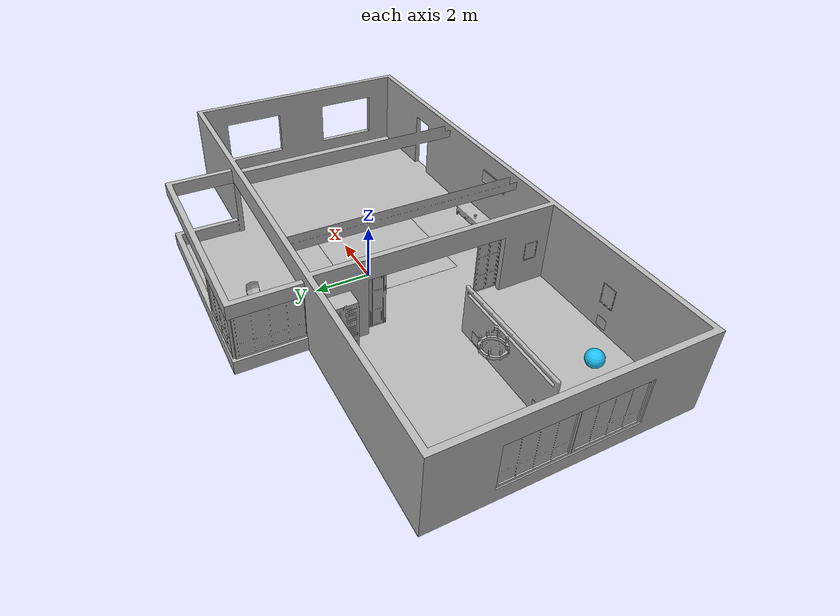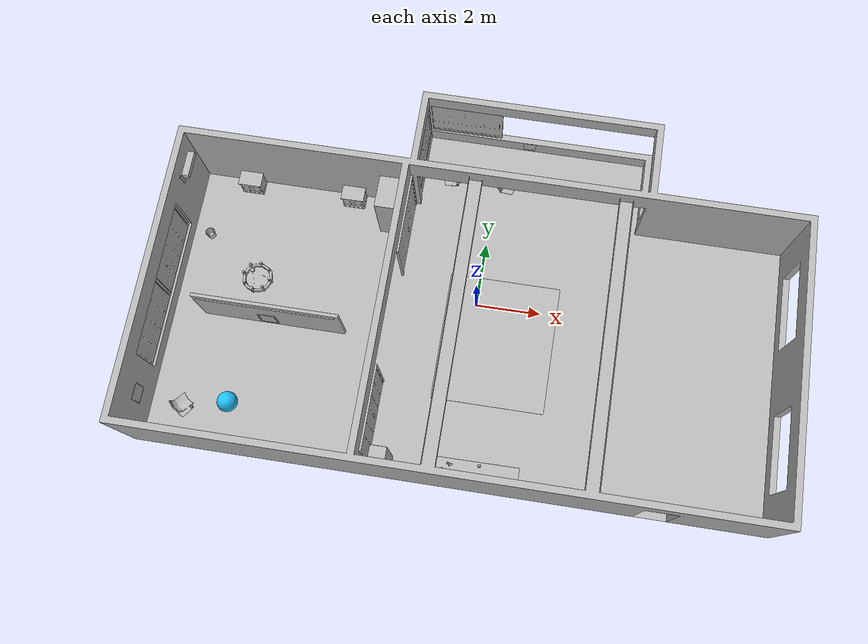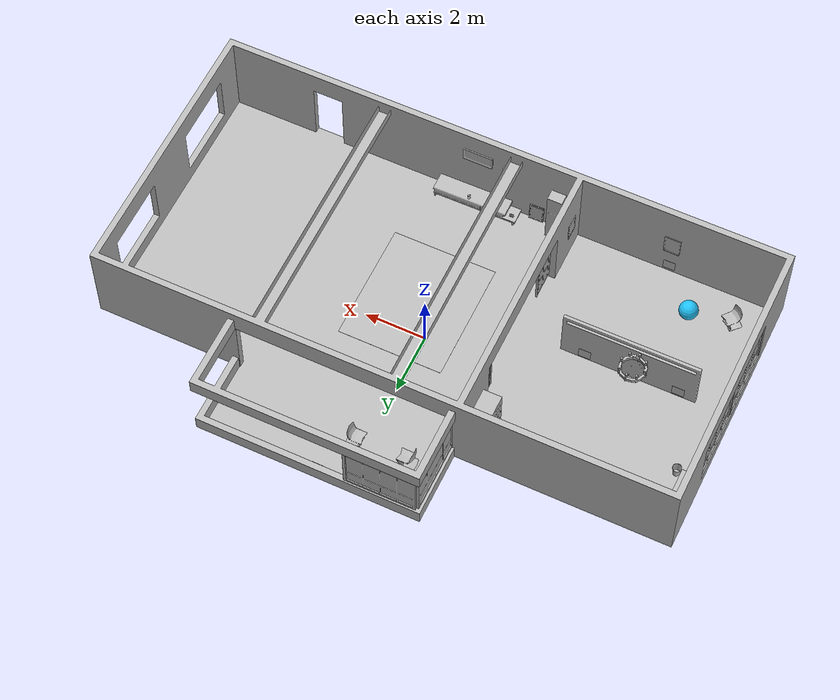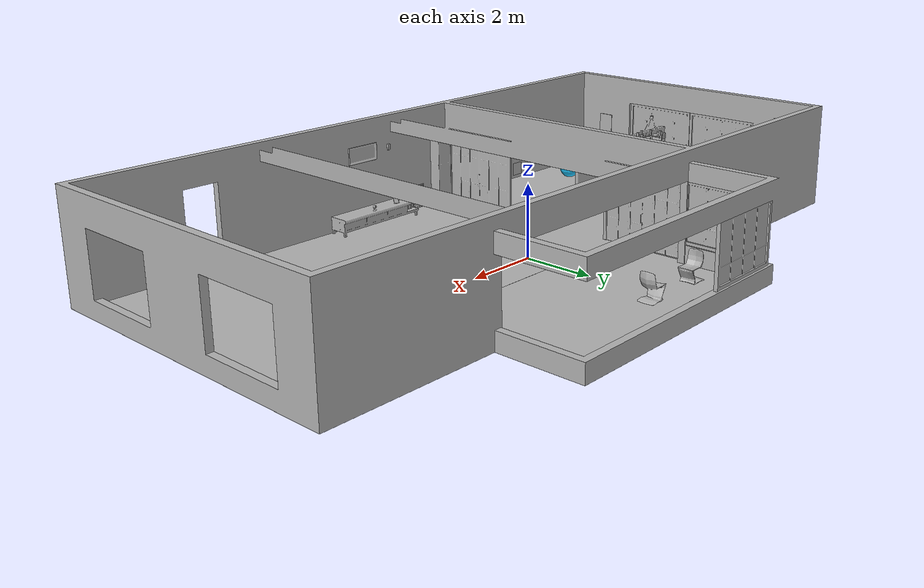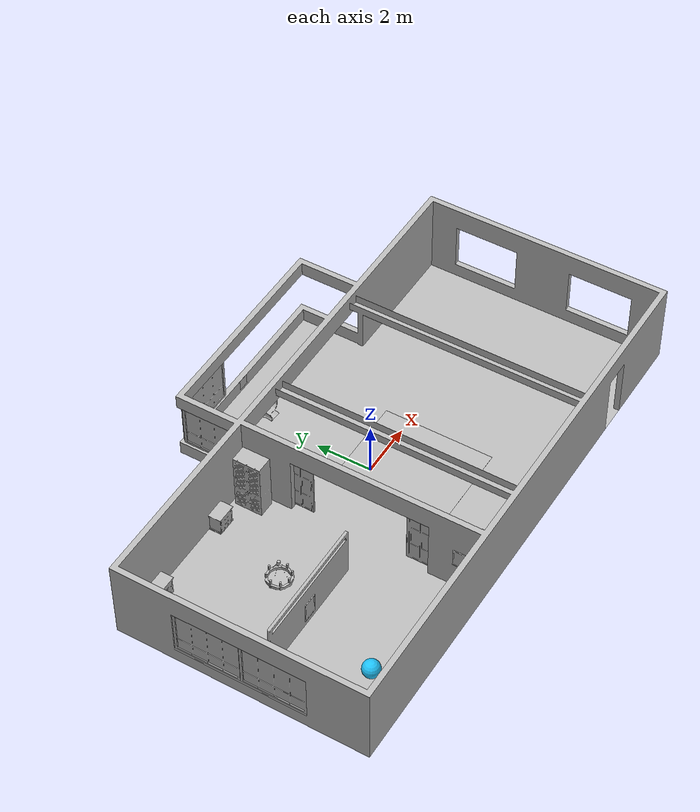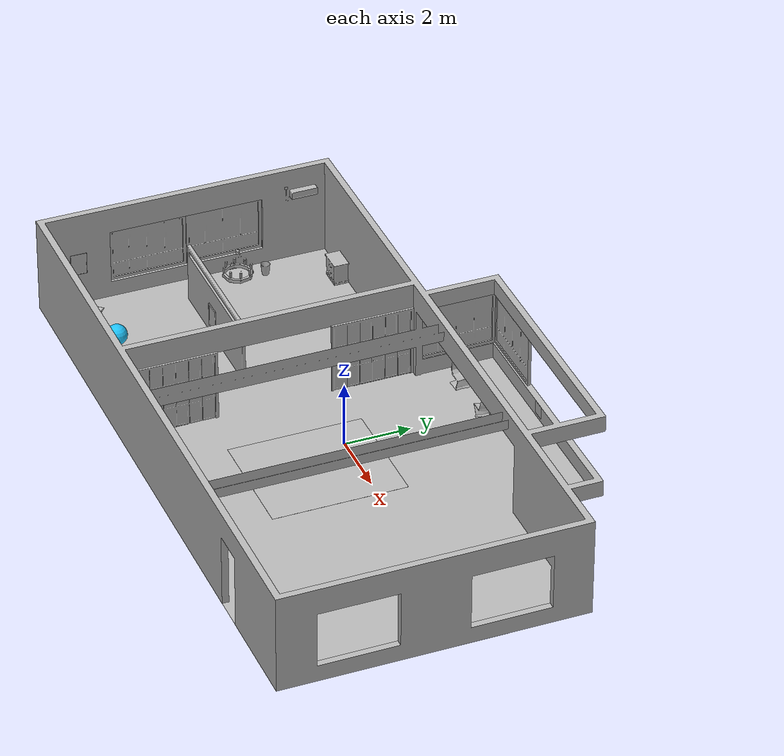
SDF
<sdf version="1.7">
 <world name="default">
  <model name="AirconditionerA_01_001">
   <static>1</static>
   <frame name="aws_robomaker_residential_AirconditionerA_01::__model__" attached_to="aws_robomaker_residential_AirconditionerA_01::link">
    <pose relative_to="__model__">0 0 0 0 -0 0</pose>
   </frame>
   <link name="aws_robomaker_residential_AirconditionerA_01::link">
    <inertial><mass>1</mass></inertial>
    <collision name="collision">
     <geometry>
      <mesh>
       <uri>model://aws_robomaker_residential_AirconditionerA_01/meshes/aws_AirconditionerA_01_collision.DAE</uri>
       <scale>1 1 1</scale>
      </mesh>
     </geometry>
    </collision>
    <visual name="visual">
     <geometry>
      <mesh>
       <uri>model://aws_robomaker_residential_AirconditionerA_01/meshes/aws_AirconditionerA_01_visual.DAE</uri>
      </mesh>
     </geometry>
     <meta><layer>1</layer></meta>
    </visual>
    <pose relative_to="aws_robomaker_residential_AirconditionerA_01::__model__">0 0 0 0 -0 0</pose>
   </link>
   <static>1</static>
   <pose>-9.19941 2.41123 2.08454 0 -0 0</pose>
  </model>
  <model name="AirconditionerB_01_001">
   <static>1</static>
   <frame name="aws_robomaker_residential_AirconditionerB_01::__model__" attached_to="aws_robomaker_residential_AirconditionerB_01::link">
    <pose relative_to="__model__">0 0 0 0 -0 0</pose>
   </frame>
   <link name="aws_robomaker_residential_AirconditionerB_01::link">
    <inertial><mass>1</mass></inertial>
    <collision name="collision">
     <geometry>
      <mesh>
       <uri>model://aws_robomaker_residential_AirconditionerB_01/meshes/aws_AirconditionerB_01_collision.DAE</uri>
       <scale>1 1 1</scale>
      </mesh>
     </geometry>
    </collision>
    <visual name="visual">
     <geometry>
      <mesh>
       <uri>model://aws_robomaker_residential_AirconditionerB_01/meshes/aws_AirconditionerB_01_visual.DAE</uri>
      </mesh>
     </geometry>
     <meta><layer>1</layer></meta>
    </visual>
    <pose relative_to="aws_robomaker_residential_AirconditionerB_01::__model__">0 0 0 0 -0 0</pose>
   </link>
   <pose>-2.00466 -5.22661 0.003485 0 -0 0</pose>
  </model>
  <model name="Ball_01_003">
   <static>1</static>
   <frame name="aws_robomaker_residential_Ball_01::__model__" attached_to="aws_robomaker_residential_Ball_01::link">
    <pose relative_to="__model__">0 0 0 0 -0 0</pose>
   </frame>
   <link name="aws_robomaker_residential_Ball_01::link">
    <inertial>
     <mass>0.12</mass>
     <inertia>
      <ixx>0.030752</ixx>
      <ixy>0</ixy>
      <ixz>0</ixz>
      <iyy>0.030752</iyy>
      <iyz>0</iyz>
      <izz>0.030752</izz>
     </inertia>
    </inertial>
    <collision name="collision">
     <geometry><sphere><radius>0.31</radius></sphere></geometry>
     <surface>
      <friction><ode><mu>0.85</mu><mu2>0.85</mu2></ode></friction>
      <contact><ode><kd>8500</kd><max_vel>5.1</max_vel></ode></contact>
     </surface>
    </collision>
    <visual name="visual">
     <geometry><sphere><radius>0.31</radius></sphere></geometry>
     <material><diffuse>0.12 0.76 0.97 1</diffuse><ambient>0.03 0.21 0.27 1</ambient></material>
     <meta><layer>1</layer></meta>
    </visual>
    <pose relative_to="aws_robomaker_residential_Ball_01::__model__">0 0 0 0 -0 0</pose>
   </link>
   <pose>-6.9455 -4.22174 0.318684 0 -0 0</pose>
  </model>
  <model name="NightStand_01_001">
   <static>1</static>
   <frame name="aws_robomaker_residential_NightStand_01::__model__" attached_to="aws_robomaker_residential_NightStand_01::link">
    <pose relative_to="__model__">0 0 0 0 -0 0</pose>
   </frame>
   <link name="aws_robomaker_residential_NightStand_01::link">
    <inertial>
     <mass>13.6</mass>
     <inertia><ixx>0.6165</ixx><ixy>0</ixy><ixz>0</ixz><iyy>1.29664</iyy><iyz>0</iyz><izz>0.7706</izz></inertia>
    </inertial>
    <collision name="collision">
     <geometry>
      <mesh>
       <uri>model://aws_robomaker_residential_NightStand_01/meshes/aws_NightStand_01_collision.DAE</uri>
       <scale>1 1 1</scale>
      </mesh>
     </geometry>
    </collision>
    <visual name="visual">
     <geometry>
      <mesh><uri>model://aws_robomaker_residential_NightStand_01/meshes/aws_NightStand_01_visual.DAE</uri></mesh>
     </geometry>
     <meta><layer>1</layer></meta>
    </visual>
    <pose relative_to="aws_robomaker_residential_NightStand_01::__model__">0 0 0 0 -0 0</pose>
   </link>
   <static>1</static>
   <pose>-7.72551 2.86042 0.005258 -2e-06 0 0</pose>
  </model>
  <model name="NightStand_01_002">
   <static>1</static>
   <frame name="aws_robomaker_residential_NightStand_01::__model__" attached_to="aws_robomaker_residential_NightStand_01::link">
    <pose relative_to="__model__">0 0 0 0 -0 0</pose>
   </frame>
   <link name="aws_robomaker_residential_NightStand_01::link">
    <inertial>
     <mass>13.6</mass>
     <inertia><ixx>0.6165</ixx><ixy>0</ixy><ixz>0</ixz><iyy>1.29664</iyy><iyz>0</iyz><izz>0.7706</izz></inertia>
    </inertial>
    <collision name="collision">
     <geometry>
      <mesh>
       <uri>model://aws_robomaker_residential_NightStand_01/meshes/aws_NightStand_01_collision.DAE</uri>
       <scale>1 1 1</scale>
      </mesh>
     </geometry>
    </collision>
    <visual name="visual">
     <geometry>
      <mesh><uri>model://aws_robomaker_residential_NightStand_01/meshes/aws_NightStand_01_visual.DAE</uri></mesh>
     </geometry>
     <meta><layer>1</layer></meta>
    </visual>
    <pose relative_to="aws_robomaker_residential_NightStand_01::__model__">0 0 0 0 -0 0</pose>
   </link>
   <static>1</static>
   <pose>-4.40734 2.86042 0.005256 0 2e-06 0</pose>
  </model>
  <model name="ChairD_01_001">
   <static>1</static>
   <frame name="aws_robomaker_residential_ChairD_01::__model__" attached_to="aws_robomaker_residential_ChairD_01::link">
    <pose relative_to="__model__">0 0 0 0 -0 0</pose>
   </frame>
   <link name="aws_robomaker_residential_ChairD_01::link">
    <inertial>
     <mass>4.5</mass>
     <inertia><ixy>0</ixy><ixz>0</ixz><iyz>0</iyz><ixx>0.217</ixx><iyy>0.217</iyy><izz>0.067</izz></inertia>
    </inertial>
    <collision name="collision">
     <geometry>
      <mesh>
       <uri>model://aws_robomaker_residential_ChairD_01/meshes/aws_ChairD_01_collision.DAE</uri>
       <scale>1 1 1</scale>
      </mesh>
     </geometry>
    </collision>
    <visual name="visual">
     <geometry>
      <mesh><uri>model://aws_robomaker_residential_ChairD_01/meshes/aws_ChairD_01_visual.DAE</uri></mesh>
     </geometry>
     <meta><layer>1</layer></meta>
    </visual>
    <pose relative_to="aws_robomaker_residential_ChairD_01::__model__">0 0 0 0 -0 0</pose>
   </link>
   <pose>-1.38078 4.10446 0 0 -0 0</pose>
  </model>
  <model name="ChairD_01_002">
   <static>1</static>
   <frame name="aws_robomaker_residential_ChairD_01::__model__" attached_to="aws_robomaker_residential_ChairD_01::link">
    <pose relative_to="__model__">0 0 0 0 -0 0</pose>
   </frame>
   <link name="aws_robomaker_residential_ChairD_01::link">
    <inertial>
     <mass>4.5</mass>
     <inertia><ixy>0</ixy><ixz>0</ixz><iyz>0</iyz><ixx>0.217</ixx><iyy>0.217</iyy><izz>0.067</izz></inertia>
    </inertial>
    <collision name="collision">
     <geometry>
      <mesh>
       <uri>model://aws_robomaker_residential_ChairD_01/meshes/aws_ChairD_01_collision.DAE</uri>
       <scale>1 1 1</scale>
      </mesh>
     </geometry>
    </collision>
    <visual name="visual">
     <geometry>
      <mesh><uri>model://aws_robomaker_residential_ChairD_01/meshes/aws_ChairD_01_visual.DAE</uri></mesh>
     </geometry>
     <meta><layer>1</layer></meta>
    </visual>
    <pose relative_to="aws_robomaker_residential_ChairD_01::__model__">0 0 0 0 -0 0</pose>
   </link>
   <pose>0.325214 4.10446 0 0 0 -3.13874</pose>
  </model>
  <model name="ChairD_01_003">
   <static>1</static>
   <frame name="aws_robomaker_residential_ChairD_01::__model__" attached_to="aws_robomaker_residential_ChairD_01::link">
    <pose relative_to="__model__">0 0 0 0 -0 0</pose>
   </frame>
   <link name="aws_robomaker_residential_ChairD_01::link">
    <inertial>
     <mass>4.5</mass>
     <inertia><ixy>0</ixy><ixz>0</ixz><iyz>0</iyz><ixx>0.217</ixx><iyy>0.217</iyy><izz>0.067</izz></inertia>
    </inertial>
    <collision name="collision">
     <geometry>
      <mesh>
       <uri>model://aws_robomaker_residential_ChairD_01/meshes/aws_ChairD_01_collision.DAE</uri>
       <scale>1 1 1</scale>
      </mesh>
     </geometry>
    </collision>
    <visual name="visual">
     <geometry>
      <mesh><uri>model://aws_robomaker_residential_ChairD_01/meshes/aws_ChairD_01_visual.DAE</uri></mesh>
     </geometry>
     <meta><layer>1</layer></meta>
    </visual>
    <pose relative_to="aws_robomaker_residential_ChairD_01::__model__">0 0 0 0 -0 0</pose>
   </link>
   <pose>-8.27078 -4.50446 0 0 -0 0.869673</pose>
  </model>
  <model name="Chandelier_01_002">
   <static>1</static>
   <frame name="aws_robomaker_residential_Chandelier_01::__model__" attached_to="aws_robomaker_residential_Chandelier_01::link">
    <pose relative_to="__model__">0 0 0 0 -0 0</pose>
   </frame>
   <link name="aws_robomaker_residential_Chandelier_01::link">
    <inertial><mass>1</mass></inertial>
    <collision name="collision">
     <geometry>
      <mesh>
       <uri>model://aws_robomaker_residential_Chandelier_01/meshes/aws_Chandelier_01_collision.DAE</uri>
       <scale>1 1 1</scale>
      </mesh>
     </geometry>
    </collision>
    <visual name="visual">
     <geometry>
      <mesh><uri>model://aws_robomaker_residential_Chandelier_01/meshes/aws_Chandelier_01_visual.DAE</uri></mesh>
     </geometry>
     <meta><layer>2</layer></meta>
    </visual>
    <pose relative_to="aws_robomaker_residential_Chandelier_01::__model__">0 0 0 0 -0 0</pose>
   </link>
   <static>1</static>
   <pose>-6.45106 -0.69204 1.81 0 -0 0</pose>
  </model>
  <model name="Carpet_01_001">
   <static>1</static>
   <frame name="aws_robomaker_residential_Carpet_01::__model__" attached_to="aws_robomaker_residential_Carpet_01::link">
    <pose relative_to="__model__">0 0 0 0 -0 0</pose>
   </frame>
   <link name="aws_robomaker_residential_Carpet_01::link">
    <inertial><mass>8.1</mass></inertial>
    <collision name="collision">
     <geometry>
      <mesh>
       <uri>model://aws_robomaker_residential_Carpet_01/meshes/aws_Carpet_01_collision.DAE</uri>
       <scale>1 1 0.95</scale>
      </mesh>
     </geometry>
     <surface><friction><ode><mu>100</mu><mu2>50</mu2></ode></friction></surface>
     <pose>0 0 -0.01 0 -0 0</pose>
    </collision>
    <visual name="visual">
     <geometry>
      <mesh><uri>model://aws_robomaker_residential_Carpet_01/meshes/aws_Carpet_01_visual.DAE</uri></mesh>
     </geometry>
     <meta><layer>1</layer></meta>
    </visual>
    <pose relative_to="aws_robomaker_residential_Carpet_01::__model__">0 0 0 0 -0 0</pose>
   </link>
   <static>1</static>
   <pose>0.78505 -1.10665 0.001106 0 -0 0</pose>
  </model>
  <model name="SecurityCamera_01_001">
   <static>1</static>
   <frame name="aws_robomaker_residential_SecurityCamera_01::__model__" attached_to="aws_robomaker_residential_SecurityCamera_01::link">
    <pose relative_to="__model__">0 0 0 0 -0 0</pose>
   </frame>
   <link name="aws_robomaker_residential_SecurityCamera_01::link">
    <inertial>
     <mass>1</mass>
     <inertia>
      <ixx>18.2222</ixx>
      <ixy>0</ixy>
      <ixz>0</ixz>
      <iyy>18.2222</iyy>
      <iyz>0</iyz>
      <izz>0.0018767</izz>
     </inertia>
    </inertial>
    <collision name="collision">
     <geometry>
      <mesh>
       <uri>model://aws_robomaker_residential_SecurityCamera_01/meshes/aws_SecurityCamera_01_collision.DAE</uri>
       <scale>1 1 1</scale>
      </mesh>
     </geometry>
    </collision>
    <visual name="visual">
     <geometry>
      <mesh>
       <uri>model://aws_robomaker_residential_SecurityCamera_01/meshes/aws_SecurityCamera_01_visual.DAE</uri>
      </mesh>
     </geometry>
     <meta><layer>2</layer></meta>
    </visual>
    <pose relative_to="aws_robomaker_residential_SecurityCamera_01::__model__">0 0 0 0 -0 0</pose>
   </link>
   <pose>0.842134 -4.99629 0.495067 0 0 -2.84104</pose>
  </model>
  <model name="FoldingDoor_01_001">
   <static>1</static>
   <frame name="aws_robomaker_residential_FoldingDoor_01::__model__" attached_to="aws_robomaker_residential_FoldingDoor_01::link">
    <pose relative_to="__model__">0 0 0 0 -0 0</pose>
   </frame>
   <link name="aws_robomaker_residential_FoldingDoor_01::link">
    <inertial><mass>1</mass></inertial>
    <collision name="collision">
     <geometry>
      <mesh>
       <uri>model://aws_robomaker_residential_FoldingDoor_01/meshes/aws_FoldingDoor_01_collision.DAE</uri>
       <scale>1 1 1</scale>
      </mesh>
     </geometry>
    </collision>
    <visual name="visual">
     <geometry>
      <mesh><uri>model://aws_robomaker_residential_FoldingDoor_01/meshes/aws_FoldingDoor_01_visual.DAE</uri></mesh>
     </geometry>
     <meta><layer>2</layer></meta>
    </visual>
    <pose relative_to="aws_robomaker_residential_FoldingDoor_01::__model__">0 0 0 0 -0 0</pose>
   </link>
   <static>1</static>
   <pose>-2.4611 1.84422 0.041881 0 -0 0</pose>
  </model>
  <model name="FoldingDoor_01_002">
   <static>1</static>
   <frame name="aws_robomaker_residential_FoldingDoor_01::__model__" attached_to="aws_robomaker_residential_FoldingDoor_01::link">
    <pose relative_to="__model__">0 0 0 0 -0 0</pose>
   </frame>
   <link name="aws_robomaker_residential_FoldingDoor_01::link">
    <inertial><mass>1</mass></inertial>
    <collision name="collision">
     <geometry>
      <mesh>
       <uri>model://aws_robomaker_residential_FoldingDoor_01/meshes/aws_FoldingDoor_01_collision.DAE</uri>
       <scale>1 1 1</scale>
      </mesh>
     </geometry>
    </collision>
    <visual name="visual">
     <geometry>
      <mesh><uri>model://aws_robomaker_residential_FoldingDoor_01/meshes/aws_FoldingDoor_01_visual.DAE</uri></mesh>
     </geometry>
     <meta><layer>2</layer></meta>
    </visual>
    <pose relative_to="aws_robomaker_residential_FoldingDoor_01::__model__">0 0 0 0 -0 0</pose>
   </link>
   <static>1</static>
   <pose>-2.4611 -4.05332 0.041881 0 -0 0</pose>
  </model>
  <model name="HouseWallB_01_001">
   <static>1</static>
   <frame name="aws_robomaker_residential_HouseWallB_01::__model__" attached_to="aws_robomaker_residential_HouseWallB_01::link">
    <pose relative_to="__model__">0 0 0 0 -0 0</pose>
   </frame>
   <link name="aws_robomaker_residential_HouseWallB_01::link">
    <inertial><mass>1</mass></inertial>
    <collision name="collision">
     <geometry>
      <mesh>
       <uri>model://aws_robomaker_residential_HouseWallB_01/meshes/aws_HouseWallB_01_collision.DAE</uri>
       <scale>1 1 1</scale>
      </mesh>
     </geometry>
    </collision>
    <visual name="visual">
     <geometry>
      <mesh><uri>model://aws_robomaker_residential_HouseWallB_01/meshes/aws_HouseWallB_01_visual.DAE</uri></mesh>
     </geometry>
     <meta><layer>2</layer></meta>
    </visual>
    <pose relative_to="aws_robomaker_residential_HouseWallB_01::__model__">0 0 0 0 -0 0</pose>
   </link>
   <static>1</static>
  </model>
  <model name="FloorB_01_001">
   <static>1</static>
   <frame name="aws_robomaker_residential_FloorB_01::__model__" attached_to="aws_robomaker_residential_FloorB_01::link">
    <pose relative_to="__model__">0 0 0 0 -0 0</pose>
   </frame>
   <link name="aws_robomaker_residential_FloorB_01::link">
    <inertial><mass>100</mass></inertial>
    <collision name="collision">
     <geometry>
      <mesh>
       <uri>model://aws_robomaker_residential_FloorB_01/meshes/aws_FloorB_01_collision.DAE</uri>
       <scale>1 1 0.9</scale>
      </mesh>
     </geometry>
     <surface><friction><ode><mu>100</mu><mu2>50</mu2></ode></friction></surface>
    </collision>
    <visual name="visual">
     <geometry>
      <mesh><uri>model://aws_robomaker_residential_FloorB_01/meshes/aws_FloorB_01_visual.DAE</uri></mesh>
     </geometry>
     <meta><layer>1</layer></meta>
    </visual>
    <pose relative_to="aws_robomaker_residential_FloorB_01::__model__">0 0 0 0 -0 0</pose>
   </link>
   <static>1</static>
   <pose>0.000398 0.002928 0 0 -0 0</pose>
  </model>
  <model name="LightC_01_002">
   <static>1</static>
   <frame name="aws_robomaker_residential_LightC_01::__model__" attached_to="aws_robomaker_residential_LightC_01::link">
    <pose relative_to="__model__">0 0 0 0 -0 0</pose>
   </frame>
   <link name="aws_robomaker_residential_LightC_01::link">
    <inertial><mass>1</mass></inertial>
    <collision name="collision">
     <geometry>
      <mesh>
       <uri>model://aws_robomaker_residential_LightC_01/meshes/aws_LightC_01_collision.DAE</uri>
       <scale>1 1 1</scale>
      </mesh>
     </geometry>
    </collision>
    <visual name="visual">
     <geometry>
      <mesh><uri>model://aws_robomaker_residential_LightC_01/meshes/aws_LightC_01_visual.DAE</uri></mesh>
     </geometry>
     <meta><layer>2</layer></meta>
    </visual>
    <pose relative_to="aws_robomaker_residential_LightC_01::__model__">0 0 0 0 -0 0</pose>
   </link>
   <static>1</static>
   <pose>-0.138245 -5.44437 2 0 -0 0</pose>
  </model>
  <model name="PortraitA_01">
   <static>1</static>
   <frame name="aws_robomaker_residential_PortraitA_01::__model__" attached_to="aws_robomaker_residential_PortraitA_01::link">
    <pose relative_to="__model__">0 0 0 0 -0 0</pose>
   </frame>
   <link name="aws_robomaker_residential_PortraitA_01::link">
    <inertial><mass>1</mass></inertial>
    <collision name="collision">
     <geometry>
      <mesh>
       <uri>model://aws_robomaker_residential_PortraitA_01/meshes/aws_PortraitA_01_collision.DAE</uri>
       <scale>1 1 1</scale>
      </mesh>
     </geometry>
    </collision>
    <visual name="visual">
     <geometry>
      <mesh><uri>model://aws_robomaker_residential_PortraitA_01/meshes/aws_PortraitA_01_visual.DAE</uri></mesh>
     </geometry>
     <meta><layer>2</layer></meta>
    </visual>
    <pose relative_to="aws_robomaker_residential_PortraitA_01::__model__">0 0 0 0 -0 0</pose>
   </link>
   <static>1</static>
   <pose>-2.71236 -4.81754 1 0 -0 1.5668</pose>
  </model>
  <model name="PortraitB_01">
   <static>1</static>
   <frame name="aws_robomaker_residential_PortraitB_01::__model__" attached_to="aws_robomaker_residential_PortraitB_01::link">
    <pose relative_to="__model__">0 0 0 0 -0 0</pose>
   </frame>
   <link name="aws_robomaker_residential_PortraitB_01::link">
    <inertial><mass>1</mass></inertial>
    <collision name="collision">
     <geometry>
      <mesh>
       <uri>model://aws_robomaker_residential_PortraitB_01/meshes/aws_PortraitB_01_collision.DAE</uri>
       <scale>1 1 1</scale>
      </mesh>
     </geometry>
    </collision>
    <visual name="visual">
     <geometry>
      <mesh><uri>model://aws_robomaker_residential_PortraitB_01/meshes/aws_PortraitB_01_visual.DAE</uri></mesh>
     </geometry>
     <meta><layer>2</layer></meta>
    </visual>
    <pose relative_to="aws_robomaker_residential_PortraitB_01::__model__">0 0 0 0 -0 0</pose>
   </link>
   <static>1</static>
   <pose>-1.27968 -5.42963 0 -0.076901 0 -3.11672</pose>
  </model>
  <model name="PortraitC_01">
   <static>1</static>
   <frame name="aws_robomaker_residential_PortraitC_01::__model__" attached_to="aws_robomaker_residential_PortraitC_01::link">
    <pose relative_to="__model__">0 0 0 0 -0 0</pose>
   </frame>
   <link name="aws_robomaker_residential_PortraitC_01::link">
    <inertial><mass>1</mass></inertial>
    <collision name="collision">
     <geometry>
      <mesh>
       <uri>model://aws_robomaker_residential_PortraitC_01/meshes/aws_PortraitC_01_collision.DAE</uri>
       <scale>1 1 1</scale>
      </mesh>
     </geometry>
    </collision>
    <visual name="visual">
     <geometry>
      <mesh><uri>model://aws_robomaker_residential_PortraitC_01/meshes/aws_PortraitC_01_visual.DAE</uri></mesh>
     </geometry>
     <meta><layer>2</layer></meta>
    </visual>
    <pose relative_to="aws_robomaker_residential_PortraitC_01::__model__">0 0 0 0 -0 0</pose>
   </link>
   <static>1</static>
   <pose>-9.2949 -4.52608 1 0 -0 1.55473</pose>
  </model>
  <model name="PortraitD_01">
   <static>1</static>
   <frame name="aws_robomaker_residential_PortraitD_01::__model__" attached_to="aws_robomaker_residential_PortraitD_01::link">
    <pose relative_to="__model__">0 0 0 0 -0 0</pose>
   </frame>
   <link name="aws_robomaker_residential_PortraitD_01::link">
    <inertial><mass>1.5</mass></inertial>
    <collision name="collision">
     <geometry>
      <mesh>
       <uri>model://aws_robomaker_residential_PortraitD_01/meshes/aws_PortraitD_01_collision.DAE</uri>
       <scale>1 1 1</scale>
      </mesh>
     </geometry>
    </collision>
    <visual name="visual">
     <geometry>
      <mesh><uri>model://aws_robomaker_residential_PortraitD_01/meshes/aws_PortraitD_01_visual.DAE</uri></mesh>
     </geometry>
     <meta><layer>2</layer></meta>
    </visual>
    <pose relative_to="aws_robomaker_residential_PortraitD_01::__model__">0 0 0 0 -0 0</pose>
   </link>
   <static>1</static>
   <pose>0.789763 -5.47872 1.8 0 -0 3.13853</pose>
  </model>
  <model name="PortraitE_01">
   <static>1</static>
   <frame name="aws_robomaker_residential_PortraitE_01::__model__" attached_to="aws_robomaker_residential_PortraitE_01::link">
    <pose relative_to="__model__">0 0 0 0 -0 0</pose>
   </frame>
   <link name="aws_robomaker_residential_PortraitE_01::link">
    <inertial><mass>1</mass></inertial>
    <collision name="collision">
     <geometry>
      <mesh>
       <uri>model://aws_robomaker_residential_PortraitE_01/meshes/aws_PortraitE_01_collision.DAE</uri>
       <scale>1 1 1</scale>
      </mesh>
     </geometry>
    </collision>
    <visual name="visual">
     <geometry>
      <mesh><uri>model://aws_robomaker_residential_PortraitE_01/meshes/aws_PortraitE_01_visual.DAE</uri></mesh>
     </geometry>
     <meta><layer>2</layer></meta>
    </visual>
    <pose relative_to="aws_robomaker_residential_PortraitE_01::__model__">0 0 0 0 -0 0</pose>
   </link>
   <static>1</static>
   <pose>-5.77309 -5.49247 1 0 -0 3.13263</pose>
  </model>
  <model name="PortraitE_02">
   <static>1</static>
   <frame name="aws_robomaker_residential_PortraitE_02::__model__" attached_to="aws_robomaker_residential_PortraitE_02::link">
    <pose relative_to="__model__">0 0 0 0 -0 0</pose>
   </frame>
   <link name="aws_robomaker_residential_PortraitE_02::link">
    <inertial><mass>1</mass></inertial>
    <collision name="collision">
     <geometry>
      <mesh>
       <uri>model://aws_robomaker_residential_PortraitE_02/meshes/aws_PortraitE_01_collision.DAE</uri>
       <scale>1 1 1</scale>
      </mesh>
     </geometry>
    </collision>
    <visual name="visual">
     <geometry>
      <mesh><uri>model://aws_robomaker_residential_PortraitE_02/meshes/aws_PortraitE_01_visual.DAE</uri></mesh>
     </geometry>
     <meta><layer>2</layer></meta>
    </visual>
    <pose relative_to="aws_robomaker_residential_PortraitE_02::__model__">0 0 0 0 -0 0</pose>
   </link>
   <static>1</static>
   <pose>-6.19302 -1.59021 0.3 0 -0 0.00429</pose>
  </model>
  <model name="DeskPortraitA_01">
   <static>1</static>
   <frame name="aws_robomaker_residential_DeskPortraitA_01::__model__" attached_to="aws_robomaker_residential_DeskPortraitA_01::link">
    <pose relative_to="__model__">0 0 0 0 -0 0</pose>
   </frame>
   <link name="aws_robomaker_residential_DeskPortraitA_01::link">
    <inertial>
     <mass>1</mass>
     <inertia><ixx>0.0835</ixx><ixy>0</ixy><ixz>0</ixz><iyy>0.16</iyy><iyz>0</iyz><izz>0.08347</izz></inertia>
    </inertial>
    <collision name="collision">
     <geometry>
      <mesh>
       <uri>model://aws_robomaker_residential_DeskPortraitA_01/meshes/aws_DeskPortraitA_01_collision.DAE</uri>
       <scale>1 1 1</scale>
      </mesh>
     </geometry>
    </collision>
    <visual name="visual">
     <geometry>
      <mesh>
       <uri>model://aws_robomaker_residential_DeskPortraitA_01/meshes/aws_DeskPortraitA_01_visual.DAE</uri>
      </mesh>
     </geometry>
     <meta><layer>1</layer></meta>
    </visual>
    <pose relative_to="aws_robomaker_residential_DeskPortraitA_01::__model__">0 0 0 0 -0 0</pose>
   </link>
   <pose>-0.036864 -5.11016 0.49866 0 -0 2.92778</pose>
  </model>
  <model name="DeskPortraitD_02">
   <static>1</static>
   <frame name="aws_robomaker_residential_DeskPortraitD_02::__model__" attached_to="aws_robomaker_residential_DeskPortraitD_02::link">
    <pose relative_to="__model__">0 0 0 0 -0 0</pose>
   </frame>
   <link name="aws_robomaker_residential_DeskPortraitD_02::link">
    <inertial>
     <mass>0.4</mass>
     <inertia><ixx>0.0616</ixx><ixy>0</ixy><ixz>0</ixz><iyy>0.1313</iyy><iyz>0</iyz><izz>0.0803</izz></inertia>
    </inertial>
    <collision name="collision">
     <geometry>
      <mesh>
       <uri>model://aws_robomaker_residential_DeskPortraitD_02/meshes/aws_DeskPortraitD_01_collision.DAE</uri>
       <scale>1 1 1</scale>
      </mesh>
     </geometry>
     <surface>
      <friction><ode><mu>0.7</mu><mu2>0.7</mu2></ode></friction>
      <contact><ode><kd>28500</kd></ode></contact>
     </surface>
    </collision>
    <visual name="visual">
     <geometry>
      <mesh>
       <uri>model://aws_robomaker_residential_DeskPortraitD_02/meshes/aws_DeskPortraitD_01_visual.DAE</uri>
      </mesh>
     </geometry>
     <meta><layer>1</layer></meta>
    </visual>
    <pose relative_to="aws_robomaker_residential_DeskPortraitD_02::__model__">0 0 0 0 -0 0</pose>
   </link>
   <pose>-0.589211 -5.10989 0.192145 -1.5e-05 -0.000174 -3.11254</pose>
  </model>
  <model name="Trash_01_002">
   <static>1</static>
   <frame name="aws_robomaker_residential_Trash_01::__model__" attached_to="aws_robomaker_residential_Trash_01::link">
    <pose relative_to="__model__">0 0 0 0 -0 0</pose>
   </frame>
   <link name="aws_robomaker_residential_Trash_01::link">
    <inertial>
     <mass>0.1</mass>
     <inertia><ixy>0</ixy><ixz>0</ixz><iyz>0</iyz><ixx>0.05288</ixx><iyy>0.05288</iyy><izz>0.09132</izz></inertia>
    </inertial>
    <collision name="collision">
     <geometry>
      <mesh>
       <uri>model://aws_robomaker_residential_Trash_01/meshes/aws_Trash_01_collision.DAE</uri>
       <scale>1 1 1</scale>
      </mesh>
     </geometry>
    </collision>
    <visual name="visual">
     <geometry>
      <mesh><uri>model://aws_robomaker_residential_Trash_01/meshes/aws_Trash_01_visual.DAE</uri></mesh>
     </geometry>
     <meta><layer>1</layer></meta>
    </visual>
    <pose relative_to="aws_robomaker_residential_Trash_01::__model__">0 0 0 0 -0 0</pose>
   </link>
   <pose>-8.70415 1.00058 0.011 0 -0 0</pose>
  </model>
  <model name="TVCabinet_01_001">
   <static>1</static>
   <frame name="aws_robomaker_residential_TVCabinet_01::__model__" attached_to="aws_robomaker_residential_TVCabinet_01::link">
    <pose relative_to="__model__">0 0 0 0 -0 0</pose>
   </frame>
   <link name="aws_robomaker_residential_TVCabinet_01::link">
    <inertial>
     <mass>59.2</mass>
     <inertia><ixx>30.4</ixx><ixy>0</ixy><ixz>0</ixz><iyy>2.56</iyy><iyz>0</iyz><izz>31.38</izz></inertia>
    </inertial>
    <collision name="collision">
     <geometry>
      <mesh>
       <uri>model://aws_robomaker_residential_TVCabinet_01/meshes/aws_TVCabinet_01_collision.DAE</uri>
       <scale>1 1 1</scale>
      </mesh>
     </geometry>
    </collision>
    <visual name="visual">
     <geometry>
      <mesh><uri>model://aws_robomaker_residential_TVCabinet_01/meshes/aws_TVCabinet_01_visual.DAE</uri></mesh>
     </geometry>
     <meta><layer>1</layer></meta>
    </visual>
    <pose relative_to="aws_robomaker_residential_TVCabinet_01::__model__">0 0 0 0 -0 0</pose>
   </link>
   <static>1</static>
   <pose>0.629509 -5.18358 -0.017049 0 -0 1.5792</pose>
  </model>
  <model name="RoomWall_01_001">
   <static>1</static>
   <frame name="aws_robomaker_residential_RoomWall_01::__model__" attached_to="aws_robomaker_residential_RoomWall_01::link">
    <pose relative_to="__model__">0 0 0 0 -0 0</pose>
   </frame>
   <link name="aws_robomaker_residential_RoomWall_01::link">
    <inertial><mass>100</mass></inertial>
    <collision name="collision">
     <geometry>
      <mesh>
       <uri>model://aws_robomaker_residential_RoomWall_01/meshes/aws_RoomWall_01_collision.DAE</uri>
       <scale>1 1 1</scale>
      </mesh>
     </geometry>
    </collision>
    <visual name="visual">
     <geometry>
      <mesh><uri>model://aws_robomaker_residential_RoomWall_01/meshes/aws_RoomWall_01_visual.DAE</uri></mesh>
     </geometry>
     <meta><layer>2</layer></meta>
    </visual>
    <pose relative_to="aws_robomaker_residential_RoomWall_01::__model__">0 0 0 0 -0 0</pose>
   </link>
   <static>1</static>
   <pose>-6.09755 -1.49618 0.028124 0 -0 0</pose>
  </model>
  <model name="Wardrobe_01_001">
   <static>1</static>
   <frame name="aws_robomaker_residential_Wardrobe_01::__model__" attached_to="aws_robomaker_residential_Wardrobe_01::link">
    <pose relative_to="__model__">0 0 0 0 -0 0</pose>
   </frame>
   <link name="aws_robomaker_residential_Wardrobe_01::link">
    <inertial><mass>51.7</mass></inertial>
    <collision name="collision">
     <geometry>
      <mesh>
       <uri>model://aws_robomaker_residential_Wardrobe_01/meshes/aws_Wardrobe_01_collision.DAE</uri>
       <scale>1 1 1</scale>
      </mesh>
     </geometry>
    </collision>
    <visual name="visual">
     <geometry>
      <mesh><uri>model://aws_robomaker_residential_Wardrobe_01/meshes/aws_Wardrobe_01_visual.DAE</uri></mesh>
     </geometry>
     <meta><layer>1</layer></meta>
    </visual>
    <pose relative_to="aws_robomaker_residential_Wardrobe_01::__model__">0 0 0 0 -0 0</pose>
   </link>
   <static>1</static>
   <pose>-3.14671 2.4762 0.000704 0 0 -1.56967</pose>
  </model>
  <model name="RoomWindow_01_001">
   <static>1</static>
   <frame name="aws_robomaker_residential_RoomWindow_01::__model__" attached_to="aws_robomaker_residential_RoomWindow_01::link">
    <pose relative_to="__model__">0 0 0 0 -0 0</pose>
   </frame>
   <link name="aws_robomaker_residential_RoomWindow_01::link">
    <inertial><mass>1</mass></inertial>
    <collision name="collision">
     <geometry>
      <mesh>
       <uri>model://aws_robomaker_residential_RoomWindow_01/meshes/aws_RoomWindow_01_collision.DAE</uri>
       <scale>1 1 1</scale>
      </mesh>
     </geometry>
    </collision>
    <visual name="visual">
     <geometry>
      <mesh><uri>model://aws_robomaker_residential_RoomWindow_01/meshes/aws_RoomWindow_01_visual.DAE</uri></mesh>
     </geometry>
     <meta><layer>2</layer></meta>
    </visual>
    <pose relative_to="aws_robomaker_residential_RoomWindow_01::__model__">0 0 0 0 -0 0</pose>
   </link>
   <static>1</static>
   <pose>-9.4186 -0.026285 0.502739 0 -0 0</pose>
  </model>
  <model name="RoomWindow_01_002">
   <static>1</static>
   <frame name="aws_robomaker_residential_RoomWindow_01::__model__" attached_to="aws_robomaker_residential_RoomWindow_01::link">
    <pose relative_to="__model__">0 0 0 0 -0 0</pose>
   </frame>
   <link name="aws_robomaker_residential_RoomWindow_01::link">
    <inertial><mass>1</mass></inertial>
    <collision name="collision">
     <geometry>
      <mesh>
       <uri>model://aws_robomaker_residential_RoomWindow_01/meshes/aws_RoomWindow_01_collision.DAE</uri>
       <scale>1 1 1</scale>
      </mesh>
     </geometry>
    </collision>
    <visual name="visual">
     <geometry>
      <mesh><uri>model://aws_robomaker_residential_RoomWindow_01/meshes/aws_RoomWindow_01_visual.DAE</uri></mesh>
     </geometry>
     <meta><layer>2</layer></meta>
    </visual>
    <pose relative_to="aws_robomaker_residential_RoomWindow_01::__model__">0 0 0 0 -0 0</pose>
   </link>
   <static>1</static>
   <pose>-9.4186 -2.37409 0.502739 0 -0 0</pose>
  </model>
  <model name="RoomWindow_01_008">
   <static>1</static>
   <frame name="aws_robomaker_residential_RoomWindow_01::__model__" attached_to="aws_robomaker_residential_RoomWindow_01::link">
    <pose relative_to="__model__">0 0 0 0 -0 0</pose>
   </frame>
   <link name="aws_robomaker_residential_RoomWindow_01::link">
    <inertial><mass>1</mass></inertial>
    <collision name="collision">
     <geometry>
      <mesh>
       <uri>model://aws_robomaker_residential_RoomWindow_01/meshes/aws_RoomWindow_01_collision.DAE</uri>
       <scale>1 1 1</scale>
      </mesh>
     </geometry>
    </collision>
    <visual name="visual">
     <geometry>
      <mesh><uri>model://aws_robomaker_residential_RoomWindow_01/meshes/aws_RoomWindow_01_visual.DAE</uri></mesh>
     </geometry>
     <meta><layer>2</layer></meta>
    </visual>
    <pose relative_to="aws_robomaker_residential_RoomWindow_01::__model__">0 0 0 0 -0 0</pose>
   </link>
   <static>1</static>
   <pose>-1.19934 5.60069 0.502739 0 0 -1.56627</pose>
  </model>
  <model name="RoomWindow_01_009">
   <static>1</static>
   <frame name="aws_robomaker_residential_RoomWindow_01::__model__" attached_to="aws_robomaker_residential_RoomWindow_01::link">
    <pose relative_to="__model__">0 0 0 0 -0 0</pose>
   </frame>
   <link name="aws_robomaker_residential_RoomWindow_01::link">
    <inertial><mass>1</mass></inertial>
    <collision name="collision">
     <geometry>
      <mesh>
       <uri>model://aws_robomaker_residential_RoomWindow_01/meshes/aws_RoomWindow_01_collision.DAE</uri>
       <scale>1 1 1</scale>
      </mesh>
     </geometry>
    </collision>
    <visual name="visual">
     <geometry>
      <mesh><uri>model://aws_robomaker_residential_RoomWindow_01/meshes/aws_RoomWindow_01_visual.DAE</uri></mesh>
     </geometry>
     <meta><layer>2</layer></meta>
    </visual>
    <pose relative_to="aws_robomaker_residential_RoomWindow_01::__model__">0 0 0 0 -0 0</pose>
   </link>
   <static>1</static>
   <pose>-2.39662 4.38761 0.502739 0 -0 0</pose>
  </model>
  <model name="marker_01">
   <link name="link_3">
    <inertial>
     <mass>1</mass>
     <inertia>
      <ixx>0.166667</ixx>
      <ixy>0</ixy>
      <ixz>0</ixz>
      <iyy>0.166667</iyy>
      <iyz>0</iyz>
      <izz>0.166667</izz>
     </inertia>
    </inertial>
    <pose>0 0 4e-06 0 -0 0</pose>
    <self_collide>1</self_collide>
    <kinematic>1</kinematic>
    <gravity>0</gravity>
    <visual name="visual">
     <geometry><mesh><uri>model://markers/1.dae</uri><scale>0.2 0.2 0.2</scale></mesh></geometry>
     <material><shader type="pixel"><normal_map>__default__</normal_map></shader></material>
    </visual>
    <collision name="collision">
     <geometry><mesh><uri>model://markers/1.dae</uri><scale>0.2 0.2 0.2</scale></mesh></geometry>
     <surface>
      <friction>
       <ode><mu>1</mu><mu2>1</mu2><fdir1>0 0 0</fdir1><slip1>0</slip1><slip2>0</slip2></ode>
       <torsional>
        <coefficient>1</coefficient>
        <patch_radius>0</patch_radius>
        <surface_radius>0</surface_radius>
        <use_patch_radius>1</use_patch_radius>
        <ode><slip>0</slip></ode>
       </torsional>
      </friction>
      <bounce><restitution_coefficient>0</restitution_coefficient><threshold>1e+06</threshold></bounce>
      <contact>
       <collide_without_contact>0</collide_without_contact>
       <collide_without_contact_bitmask>1</collide_without_contact_bitmask>
       <collide_bitmask>1</collide_bitmask>
       <ode>
        <soft_cfm>0</soft_cfm>
        <soft_erp>0.2</soft_erp>
        <kp>1e+13</kp>
        <kd>1</kd>
        <max_vel>0.01</max_vel>
        <min_depth>0</min_depth>
       </ode>
       <bullet>
        <split_impulse>1</split_impulse>
        <split_impulse_penetration_threshold>-0.01</split_impulse_penetration_threshold>
        <soft_cfm>0</soft_cfm>
        <soft_erp>0.2</soft_erp>
        <kp>1e+13</kp>
        <kd>1</kd>
       </bullet>
      </contact>
     </surface>
    </collision>
   </link>
   <static>0</static>
   <pose>-4.6772 -1.42525 0.30 0 -0 1.57</pose>
  </model>
  <model name="marker_02">
   <link name="link_3">
    <inertial>
     <mass>1</mass>
     <inertia>
      <ixx>0.166667</ixx>
      <ixy>0</ixy>
      <ixz>0</ixz>
      <iyy>0.166667</iyy>
      <iyz>0</iyz>
      <izz>0.166667</izz>
     </inertia>
    </inertial>
    <pose>0 0 4e-06 0 -0 0</pose>
    <self_collide>1</self_collide>
    <kinematic>1</kinematic>
    <gravity>0</gravity>
    <visual name="visual">
     <geometry><mesh><uri>model://markers/2.dae</uri><scale>0.2 0.2 0.2</scale></mesh></geometry>
     <material><shader type="pixel"><normal_map>__default__</normal_map></shader></material>
    </visual>
    <collision name="collision">
     <geometry><mesh><uri>model://markers/2.dae</uri><scale>0.2 0.2 0.2</scale></mesh></geometry>
     <surface>
      <friction>
       <ode><mu>1</mu><mu2>1</mu2><fdir1>0 0 0</fdir1><slip1>0</slip1><slip2>0</slip2></ode>
       <torsional>
        <coefficient>1</coefficient>
        <patch_radius>0</patch_radius>
        <surface_radius>0</surface_radius>
        <use_patch_radius>1</use_patch_radius>
        <ode><slip>0</slip></ode>
       </torsional>
      </friction>
      <bounce><restitution_coefficient>0</restitution_coefficient><threshold>1e+06</threshold></bounce>
      <contact>
       <collide_without_contact>0</collide_without_contact>
       <collide_without_contact_bitmask>1</collide_without_contact_bitmask>
       <collide_bitmask>1</collide_bitmask>
       <ode>
        <soft_cfm>0</soft_cfm>
        <soft_erp>0.2</soft_erp>
        <kp>1e+13</kp>
        <kd>1</kd>
        <max_vel>0.01</max_vel>
        <min_depth>0</min_depth>
       </ode>
       <bullet>
        <split_impulse>1</split_impulse>
        <split_impulse_penetration_threshold>-0.01</split_impulse_penetration_threshold>
        <soft_cfm>0</soft_cfm>
        <soft_erp>0.2</soft_erp>
        <kp>1e+13</kp>
        <kd>1</kd>
       </bullet>
      </contact>
     </surface>
    </collision>
   </link>
   <static>0</static>
   <pose>-7.73686 -1.43111 0.30 0 -0 1.57</pose>
  </model>
  <model name="marker_03">
   <link name="link_3">
    <inertial>
     <mass>1</mass>
     <inertia>
      <ixx>0.166667</ixx>
      <ixy>0</ixy>
      <ixz>0</ixz>
      <iyy>0.166667</iyy>
      <iyz>0</iyz>
      <izz>0.166667</izz>
     </inertia>
    </inertial>
    <pose>0 0 4e-06 0 -0 0</pose>
    <self_collide>1</self_collide>
    <kinematic>1</kinematic>
    <gravity>0</gravity>
    <visual name="visual">
     <geometry><mesh><uri>model://markers/3.dae</uri><scale>0.2 0.2 0.2</scale></mesh></geometry>
     <material><shader type="pixel"><normal_map>__default__</normal_map></shader></material>
    </visual>
    <collision name="collision">
     <geometry><mesh><uri>model://markers/3.dae</uri><scale>0.2 0.2 0.2</scale></mesh></geometry>
     <surface>
      <friction>
       <ode><mu>1</mu><mu2>1</mu2><fdir1>0 0 0</fdir1><slip1>0</slip1><slip2>0</slip2></ode>
       <torsional>
        <coefficient>1</coefficient>
        <patch_radius>0</patch_radius>
        <surface_radius>0</surface_radius>
        <use_patch_radius>1</use_patch_radius>
        <ode><slip>0</slip></ode>
       </torsional>
      </friction>
      <bounce><restitution_coefficient>0</restitution_coefficient><threshold>1e+06</threshold></bounce>
      <contact>
       <collide_without_contact>0</collide_without_contact>
       <collide_without_contact_bitmask>1</collide_without_contact_bitmask>
       <collide_bitmask>1</collide_bitmask>
       <ode>
        <soft_cfm>0</soft_cfm>
        <soft_erp>0.2</soft_erp>
        <kp>1e+13</kp>
        <kd>1</kd>
        <max_vel>0.01</max_vel>
        <min_depth>0</min_depth>
       </ode>
       <bullet>
        <split_impulse>1</split_impulse>
        <split_impulse_penetration_threshold>-0.01</split_impulse_penetration_threshold>
        <soft_cfm>0</soft_cfm>
        <soft_erp>0.2</soft_erp>
        <kp>1e+13</kp>
        <kd>1</kd>
       </bullet>
      </contact>
     </surface>
    </collision>
   </link>
   <static>0</static>
   <pose>-5.77456 -5.48727 0.30 0 -0 1.57</pose>
  </model>
  <model name="marker_05">
   <link name="link_3">
    <inertial>
     <mass>1</mass>
     <inertia>
      <ixx>0.166667</ixx>
      <ixy>0</ixy>
      <ixz>0</ixz>
      <iyy>0.166667</iyy>
      <iyz>0</iyz>
      <izz>0.166667</izz>
     </inertia>
    </inertial>
    <pose>0 0 4e-06 0 -0 0</pose>
    <self_collide>1</self_collide>
    <kinematic>1</kinematic>
    <gravity>0</gravity>
    <visual name="visual">
     <geometry><mesh><uri>model://markers/5.dae</uri><scale>0.2 0.2 0.2</scale></mesh></geometry>
     <material><shader type="pixel"><normal_map>__default__</normal_map></shader></material>
    </visual>
    <collision name="collision">
     <geometry><mesh><uri>model://markers/5.dae</uri><scale>0.2 0.2 0.2</scale></mesh></geometry>
     <surface>
      <friction>
       <ode><mu>1</mu><mu2>1</mu2><fdir1>0 0 0</fdir1><slip1>0</slip1><slip2>0</slip2></ode>
       <torsional>
        <coefficient>1</coefficient>
        <patch_radius>0</patch_radius>
        <surface_radius>0</surface_radius>
        <use_patch_radius>1</use_patch_radius>
        <ode><slip>0</slip></ode>
       </torsional>
      </friction>
      <bounce><restitution_coefficient>0</restitution_coefficient><threshold>1e+06</threshold></bounce>
      <contact>
       <collide_without_contact>0</collide_without_contact>
       <collide_without_contact_bitmask>1</collide_without_contact_bitmask>
       <collide_bitmask>1</collide_bitmask>
       <ode>
        <soft_cfm>0</soft_cfm>
        <soft_erp>0.2</soft_erp>
        <kp>1e+13</kp>
        <kd>1</kd>
        <max_vel>0.01</max_vel>
        <min_depth>0</min_depth>
       </ode>
       <bullet>
        <split_impulse>1</split_impulse>
        <split_impulse_penetration_threshold>-0.01</split_impulse_penetration_threshold>
        <soft_cfm>0</soft_cfm>
        <soft_erp>0.2</soft_erp>
        <kp>1e+13</kp>
        <kd>1</kd>
       </bullet>
      </contact>
     </surface>
    </collision>
   </link>
   <static>0</static>
   <pose>0.900897 5.493372 0.30 0 0 -1.57</pose>
  </model>
 </world>
</sdf>
